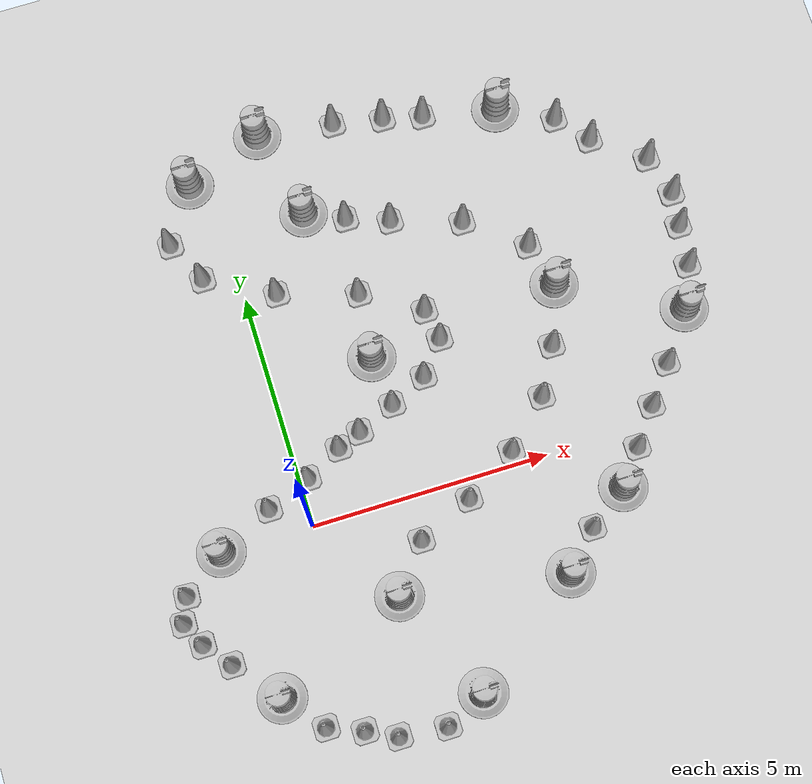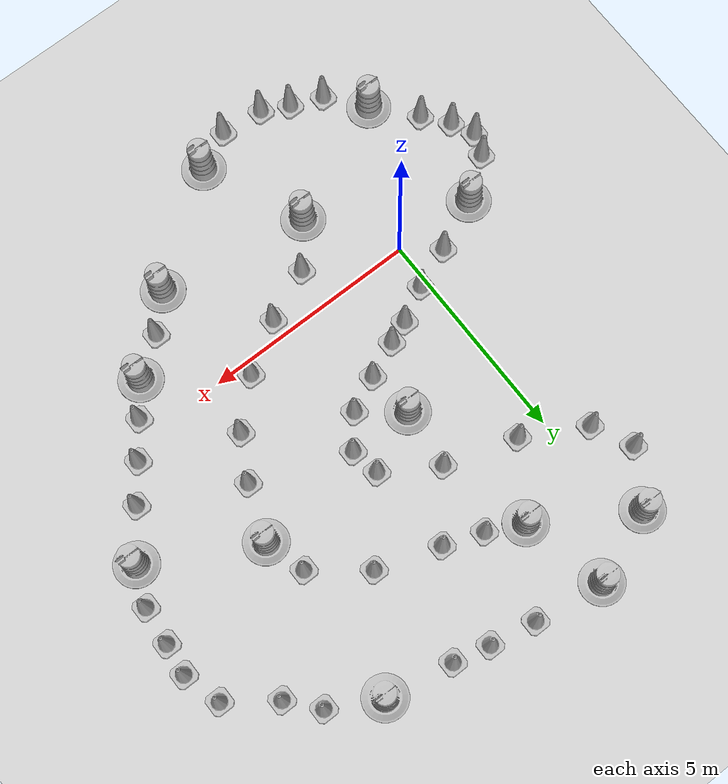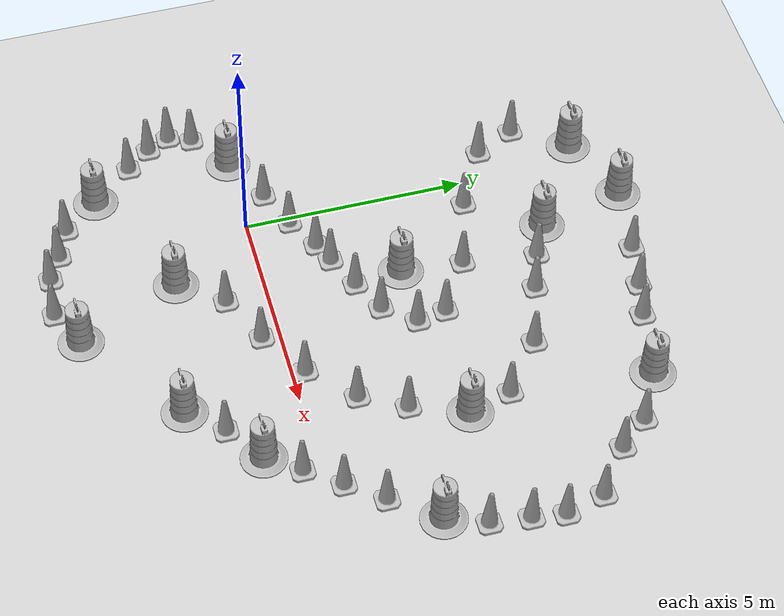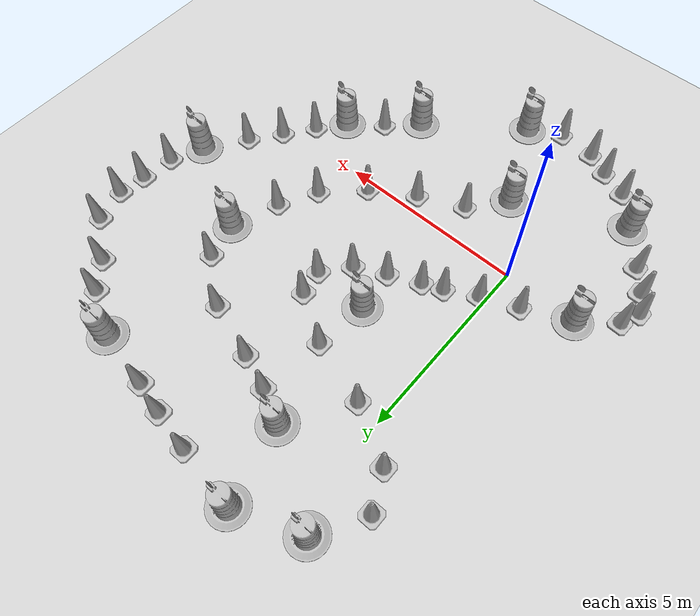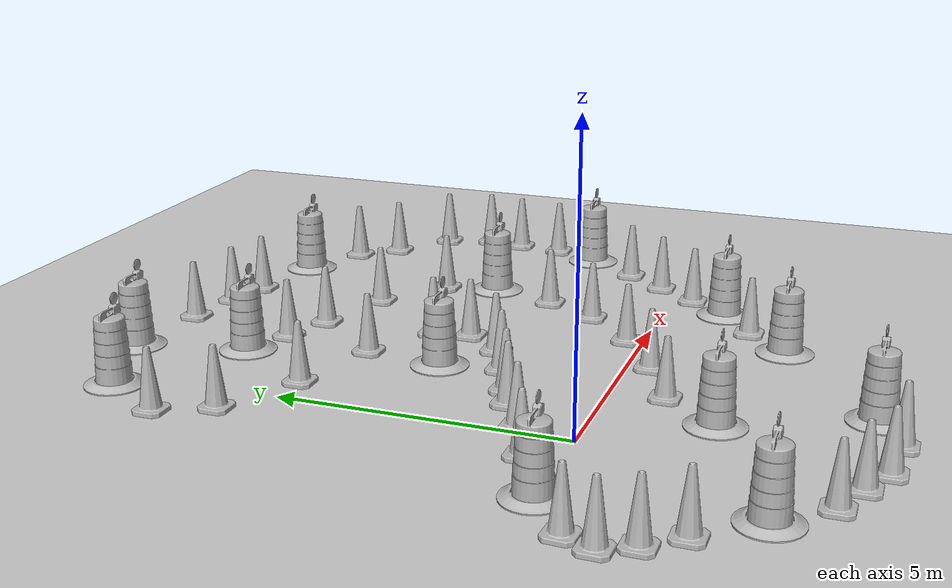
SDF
<sdf version="1.7">
 <world name="default">
  <light name="sun" type="directional">
   <pose>0 0 10 0 -0 0</pose>
   <diffuse>0.8 0.8 0.8 1</diffuse>
   <specular>0.2 0.2 0.2 1</specular>
   <attenuation>
    <range>1000</range>
    <constant>0.9</constant>
    <linear>0.01</linear>
    <quadratic>0.001</quadratic>
   </attenuation>
   <direction>-0.5 0.1 -0.9</direction>
   <spot><inner_angle>0</inner_angle><outer_angle>0</outer_angle><falloff>0</falloff></spot>
  </light>
  <model name="ground_plane">
   <static>1</static>
   <link name="link">
    <collision name="collision">
     <geometry><plane><normal>0 0 1</normal><size>100 100</size></plane></geometry>
     <surface>
      <contact><collide_bitmask>65535</collide_bitmask></contact>
      <friction><ode><mu>100</mu><mu2>50</mu2></ode></friction>
     </surface>
    </collision>
    <visual name="visual">
     <cast_shadows>0</cast_shadows>
     <geometry><plane><normal>0 0 1</normal><size>100 100</size></plane></geometry>
     <material>
      <script><uri>file://media/materials/scripts/gazebo.material</uri><name>Gazebo/Grey</name></script>
     </material>
    </visual>
   </link>
  </model>
  <gravity>0 0 -9.8</gravity>
  <magnetic_field>6e-06 2.3e-05 -4.2e-05</magnetic_field>
  <atmosphere type="adiabatic"/>
  <physics type="ode">
   <max_step_size>0.001</max_step_size>
   <real_time_factor>1</real_time_factor>
   <real_time_update_rate>1000</real_time_update_rate>
  </physics>
  <scene><ambient>0.4 0.4 0.4 1</ambient><background>0.7 0.7 0.7 1</background><shadows>1</shadows></scene>
  <audio><device>default</device></audio>
  <spherical_coordinates>
   <surface_model>EARTH_WGS84</surface_model>
   <latitude_deg>0</latitude_deg>
   <longitude_deg>0</longitude_deg>
   <elevation>0</elevation>
   <heading_deg>0</heading_deg>
  </spherical_coordinates>
  <model name="Construction Barrel">
   <link name="link">
    <inertial>
     <pose>0 0 0.4 0 -0 0</pose>
     <mass>500</mass>
     <inertia><ixx>51.2096</ixx><iyy>51.2096</iyy><izz>25</izz><ixy>0</ixy><ixz>0</ixz><iyz>0</iyz></inertia>
    </inertial>
    <collision name="collision">
     <geometry><mesh><uri>model://construction_barrel/meshes/construction_barrel.dae</uri></mesh></geometry>
    </collision>
    <visual name="visual">
     <geometry><mesh><uri>model://construction_barrel/meshes/construction_barrel.dae</uri></mesh></geometry>
    </visual>
   </link>
   <pose>-1.92451 0.031752 -3e-06 -6e-06 -5e-06 -5.8e-05</pose>
  </model>
  <model name="Construction Cone">
   <link name="link">
    <collision name="collision">
     <geometry>
      <mesh><scale>10 10 10</scale><uri>model://construction_cone/meshes/construction_cone.dae</uri></mesh>
     </geometry>
    </collision>
    <visual name="visual">
     <geometry>
      <mesh><scale>10 10 10</scale><uri>model://construction_cone/meshes/construction_cone.dae</uri></mesh>
     </geometry>
    </visual>
    <inertial>
     <inertia><ixx>1</ixx><ixy>0</ixy><ixz>0</ixz><iyy>1</iyy><iyz>0</iyz><izz>1</izz></inertia>
     <mass>1</mass>
    </inertial>
   </link>
   <pose>0.954535 1.38447 -0 0 -0 0</pose>
  </model>
  <model name="Construction Cone_0">
   <link name="link">
    <collision name="collision">
     <geometry>
      <mesh><scale>10 10 10</scale><uri>model://construction_cone/meshes/construction_cone.dae</uri></mesh>
     </geometry>
    </collision>
    <visual name="visual">
     <geometry>
      <mesh><scale>10 10 10</scale><uri>model://construction_cone/meshes/construction_cone.dae</uri></mesh>
     </geometry>
    </visual>
    <inertial>
     <inertia><ixx>1</ixx><ixy>0</ixy><ixz>0</ixz><iyy>1</iyy><iyz>0</iyz><izz>1</izz></inertia>
     <mass>1</mass>
    </inertial>
   </link>
   <pose>1.46718 1.5901 -0 0 -0 0</pose>
  </model>
  <model name="Construction Cone_1">
   <link name="link">
    <collision name="collision">
     <geometry>
      <mesh><scale>10 10 10</scale><uri>model://construction_cone/meshes/construction_cone.dae</uri></mesh>
     </geometry>
    </collision>
    <visual name="visual">
     <geometry>
      <mesh><scale>10 10 10</scale><uri>model://construction_cone/meshes/construction_cone.dae</uri></mesh>
     </geometry>
    </visual>
    <inertial>
     <inertia><ixx>1</ixx><ixy>0</ixy><ixz>0</ixz><iyy>1</iyy><iyz>0</iyz><izz>1</izz></inertia>
     <mass>1</mass>
    </inertial>
   </link>
   <pose>2.26933 1.94448 -0 0 -1e-06 0</pose>
  </model>
  <model name="Construction Cone_2">
   <link name="link">
    <collision name="collision">
     <geometry>
      <mesh><scale>10 10 10</scale><uri>model://construction_cone/meshes/construction_cone.dae</uri></mesh>
     </geometry>
    </collision>
    <visual name="visual">
     <geometry>
      <mesh><scale>10 10 10</scale><uri>model://construction_cone/meshes/construction_cone.dae</uri></mesh>
     </geometry>
    </visual>
    <inertial>
     <inertia><ixx>1</ixx><ixy>0</ixy><ixz>0</ixz><iyy>1</iyy><iyz>0</iyz><izz>1</izz></inertia>
     <mass>1</mass>
    </inertial>
   </link>
   <pose>3.0619 2.32058 -0 0 -1e-06 0</pose>
  </model>
  <model name="Construction Cone_3">
   <link name="link">
    <collision name="collision">
     <geometry>
      <mesh><scale>10 10 10</scale><uri>model://construction_cone/meshes/construction_cone.dae</uri></mesh>
     </geometry>
    </collision>
    <visual name="visual">
     <geometry>
      <mesh><scale>10 10 10</scale><uri>model://construction_cone/meshes/construction_cone.dae</uri></mesh>
     </geometry>
    </visual>
    <inertial>
     <inertia><ixx>1</ixx><ixy>0</ixy><ixz>0</ixz><iyy>1</iyy><iyz>0</iyz><izz>1</izz></inertia>
     <mass>1</mass>
    </inertial>
   </link>
   <pose>3.61683 2.99679 -0 0 -1e-06 0</pose>
  </model>
  <model name="Construction Cone_4">
   <link name="link">
    <collision name="collision">
     <geometry>
      <mesh><scale>10 10 10</scale><uri>model://construction_cone/meshes/construction_cone.dae</uri></mesh>
     </geometry>
    </collision>
    <visual name="visual">
     <geometry>
      <mesh><scale>10 10 10</scale><uri>model://construction_cone/meshes/construction_cone.dae</uri></mesh>
     </geometry>
    </visual>
    <inertial>
     <inertia><ixx>1</ixx><ixy>0</ixy><ixz>0</ixz><iyy>1</iyy><iyz>0</iyz><izz>1</izz></inertia>
     <mass>1</mass>
    </inertial>
   </link>
   <pose>3.49596 3.66758 -0 0 -1e-06 0</pose>
  </model>
  <model name="Construction Cone_5">
   <link name="link">
    <collision name="collision">
     <geometry>
      <mesh><scale>10 10 10</scale><uri>model://construction_cone/meshes/construction_cone.dae</uri></mesh>
     </geometry>
    </collision>
    <visual name="visual">
     <geometry>
      <mesh><scale>10 10 10</scale><uri>model://construction_cone/meshes/construction_cone.dae</uri></mesh>
     </geometry>
    </visual>
    <inertial>
     <inertia><ixx>1</ixx><ixy>0</ixy><ixz>0</ixz><iyy>1</iyy><iyz>0</iyz><izz>1</izz></inertia>
     <mass>1</mass>
    </inertial>
   </link>
   <pose>2.28848 4.41118 -1e-05 0 -0 0</pose>
  </model>
  <model name="Construction Cone_6">
   <link name="link">
    <collision name="collision">
     <geometry>
      <mesh><scale>10 10 10</scale><uri>model://construction_cone/meshes/construction_cone.dae</uri></mesh>
     </geometry>
    </collision>
    <visual name="visual">
     <geometry>
      <mesh><scale>10 10 10</scale><uri>model://construction_cone/meshes/construction_cone.dae</uri></mesh>
     </geometry>
    </visual>
    <inertial>
     <inertia><ixx>1</ixx><ixy>0</ixy><ixz>0</ixz><iyy>1</iyy><iyz>0</iyz><izz>1</izz></inertia>
     <mass>1</mass>
    </inertial>
   </link>
   <pose>0.652727 4.91754 -1e-05 -0 -0 -0</pose>
  </model>
  <model name="Construction Cone_7">
   <link name="link">
    <collision name="collision">
     <geometry>
      <mesh><scale>10 10 10</scale><uri>model://construction_cone/meshes/construction_cone.dae</uri></mesh>
     </geometry>
    </collision>
    <visual name="visual">
     <geometry>
      <mesh><scale>10 10 10</scale><uri>model://construction_cone/meshes/construction_cone.dae</uri></mesh>
     </geometry>
    </visual>
    <inertial>
     <inertia><ixx>1</ixx><ixy>0</ixy><ixz>0</ixz><iyy>1</iyy><iyz>0</iyz><izz>1</izz></inertia>
     <mass>1</mass>
    </inertial>
   </link>
   <pose>-0.740553 5.67866 0 -0 -0 -0</pose>
  </model>
  <model name="Construction Cone_8">
   <link name="link">
    <collision name="collision">
     <geometry>
      <mesh><scale>10 10 10</scale><uri>model://construction_cone/meshes/construction_cone.dae</uri></mesh>
     </geometry>
    </collision>
    <visual name="visual">
     <geometry>
      <mesh><scale>10 10 10</scale><uri>model://construction_cone/meshes/construction_cone.dae</uri></mesh>
     </geometry>
    </visual>
    <inertial>
     <inertia><ixx>1</ixx><ixy>0</ixy><ixz>0</ixz><iyy>1</iyy><iyz>0</iyz><izz>1</izz></inertia>
     <mass>1</mass>
    </inertial>
   </link>
   <pose>-1.18424 6.59227 0 -0 -0 -0</pose>
  </model>
  <model name="Construction Barrel_0">
   <link name="link">
    <inertial>
     <pose>0 0 0.4 0 -0 0</pose>
     <mass>500</mass>
     <inertia><ixx>51.2096</ixx><iyy>51.2096</iyy><izz>25</izz><ixy>0</ixy><ixz>0</ixz><iyz>0</iyz></inertia>
    </inertial>
    <collision name="collision">
     <geometry><mesh><uri>model://construction_barrel/meshes/construction_barrel.dae</uri></mesh></geometry>
    </collision>
    <visual name="visual">
     <geometry><mesh><uri>model://construction_barrel/meshes/construction_barrel.dae</uri></mesh></geometry>
    </visual>
   </link>
   <pose>-0.441609 7.76716 -3e-06 -6e-06 -5e-06 -4.5e-05</pose>
  </model>
  <model name="Construction Barrel_1">
   <link name="link">
    <inertial>
     <pose>0 0 0.4 0 -0 0</pose>
     <mass>500</mass>
     <inertia><ixx>51.2096</ixx><iyy>51.2096</iyy><izz>25</izz><ixy>0</ixy><ixz>0</ixz><iyz>0</iyz></inertia>
    </inertial>
    <collision name="collision">
     <geometry><mesh><uri>model://construction_barrel/meshes/construction_barrel.dae</uri></mesh></geometry>
    </collision>
    <visual name="visual">
     <geometry><mesh><uri>model://construction_barrel/meshes/construction_barrel.dae</uri></mesh></geometry>
    </visual>
   </link>
   <pose>1.22451 8.41761 -3e-06 -6e-06 -5e-06 -4.4e-05</pose>
  </model>
  <model name="Construction Barrel_2">
   <link name="link">
    <inertial>
     <pose>0 0 0.4 0 -0 0</pose>
     <mass>500</mass>
     <inertia><ixx>51.2096</ixx><iyy>51.2096</iyy><izz>25</izz><ixy>0</ixy><ixz>0</ixz><iyz>0</iyz></inertia>
    </inertial>
    <collision name="collision">
     <geometry><mesh><uri>model://construction_barrel/meshes/construction_barrel.dae</uri></mesh></geometry>
    </collision>
    <visual name="visual">
     <geometry><mesh><uri>model://construction_barrel/meshes/construction_barrel.dae</uri></mesh></geometry>
    </visual>
   </link>
   <pose>2.15185 3.02311 -3e-06 -6e-06 -5e-06 -4.3e-05</pose>
  </model>
  <model name="Construction Cone_9">
   <link name="link">
    <collision name="collision">
     <geometry>
      <mesh><scale>10 10 10</scale><uri>model://construction_cone/meshes/construction_cone.dae</uri></mesh>
     </geometry>
    </collision>
    <visual name="visual">
     <geometry>
      <mesh><scale>10 10 10</scale><uri>model://construction_cone/meshes/construction_cone.dae</uri></mesh>
     </geometry>
    </visual>
    <inertial>
     <inertia><ixx>1</ixx><ixy>0</ixy><ixz>0</ixz><iyy>1</iyy><iyz>0</iyz><izz>1</izz></inertia>
     <mass>1</mass>
    </inertial>
   </link>
   <pose>2.83873 8.19346 0 -0 -0 -0</pose>
  </model>
  <model name="Construction Cone_10">
   <link name="link">
    <collision name="collision">
     <geometry>
      <mesh><scale>10 10 10</scale><uri>model://construction_cone/meshes/construction_cone.dae</uri></mesh>
     </geometry>
    </collision>
    <visual name="visual">
     <geometry>
      <mesh><scale>10 10 10</scale><uri>model://construction_cone/meshes/construction_cone.dae</uri></mesh>
     </geometry>
    </visual>
    <inertial>
     <inertia><ixx>1</ixx><ixy>0</ixy><ixz>0</ixz><iyy>1</iyy><iyz>0</iyz><izz>1</izz></inertia>
     <mass>1</mass>
    </inertial>
   </link>
   <pose>4.72101 7.80061 -0 0 -1e-06 0</pose>
  </model>
  <model name="Construction Cone_11">
   <link name="link">
    <collision name="collision">
     <geometry>
      <mesh><scale>10 10 10</scale><uri>model://construction_cone/meshes/construction_cone.dae</uri></mesh>
     </geometry>
    </collision>
    <visual name="visual">
     <geometry>
      <mesh><scale>10 10 10</scale><uri>model://construction_cone/meshes/construction_cone.dae</uri></mesh>
     </geometry>
    </visual>
    <inertial>
     <inertia><ixx>1</ixx><ixy>0</ixy><ixz>0</ixz><iyy>1</iyy><iyz>0</iyz><izz>1</izz></inertia>
     <mass>1</mass>
    </inertial>
   </link>
   <pose>2.01477 -0.929478 -0 0 -0 0</pose>
  </model>
  <model name="Construction Cone_12">
   <link name="link">
    <collision name="collision">
     <geometry>
      <mesh><scale>10 10 10</scale><uri>model://construction_cone/meshes/construction_cone.dae</uri></mesh>
     </geometry>
    </collision>
    <visual name="visual">
     <geometry>
      <mesh><scale>10 10 10</scale><uri>model://construction_cone/meshes/construction_cone.dae</uri></mesh>
     </geometry>
    </visual>
    <inertial>
     <inertia><ixx>1</ixx><ixy>0</ixy><ixz>0</ixz><iyy>1</iyy><iyz>0</iyz><izz>1</izz></inertia>
     <mass>1</mass>
    </inertial>
   </link>
   <pose>3.19186 -0.402968 -0 0 -0 0</pose>
  </model>
  <model name="Construction Cone_13">
   <link name="link">
    <collision name="collision">
     <geometry>
      <mesh><scale>10 10 10</scale><uri>model://construction_cone/meshes/construction_cone.dae</uri></mesh>
     </geometry>
    </collision>
    <visual name="visual">
     <geometry>
      <mesh><scale>10 10 10</scale><uri>model://construction_cone/meshes/construction_cone.dae</uri></mesh>
     </geometry>
    </visual>
    <inertial>
     <inertia><ixx>1</ixx><ixy>0</ixy><ixz>0</ixz><iyy>1</iyy><iyz>0</iyz><izz>1</izz></inertia>
     <mass>1</mass>
    </inertial>
   </link>
   <pose>4.31562 0.287744 -0 0 -0 0</pose>
  </model>
  <model name="Construction Cone_14">
   <link name="link">
    <collision name="collision">
     <geometry>
      <mesh><scale>10 10 10</scale><uri>model://construction_cone/meshes/construction_cone.dae</uri></mesh>
     </geometry>
    </collision>
    <visual name="visual">
     <geometry>
      <mesh><scale>10 10 10</scale><uri>model://construction_cone/meshes/construction_cone.dae</uri></mesh>
     </geometry>
    </visual>
    <inertial>
     <inertia><ixx>1</ixx><ixy>0</ixy><ixz>0</ixz><iyy>1</iyy><iyz>0</iyz><izz>1</izz></inertia>
     <mass>1</mass>
    </inertial>
   </link>
   <pose>5.26056 1.19382 -0 0 -0 0</pose>
  </model>
  <model name="Construction Cone_15">
   <link name="link">
    <collision name="collision">
     <geometry>
      <mesh><scale>10 10 10</scale><uri>model://construction_cone/meshes/construction_cone.dae</uri></mesh>
     </geometry>
    </collision>
    <visual name="visual">
     <geometry>
      <mesh><scale>10 10 10</scale><uri>model://construction_cone/meshes/construction_cone.dae</uri></mesh>
     </geometry>
    </visual>
    <inertial>
     <inertia><ixx>1</ixx><ixy>0</ixy><ixz>0</ixz><iyy>1</iyy><iyz>0</iyz><izz>1</izz></inertia>
     <mass>1</mass>
    </inertial>
   </link>
   <pose>5.7968 2.17287 -0 0 -0 0</pose>
  </model>
  <model name="Construction Cone_16">
   <link name="link">
    <collision name="collision">
     <geometry>
      <mesh><scale>10 10 10</scale><uri>model://construction_cone/meshes/construction_cone.dae</uri></mesh>
     </geometry>
    </collision>
    <visual name="visual">
     <geometry>
      <mesh><scale>10 10 10</scale><uri>model://construction_cone/meshes/construction_cone.dae</uri></mesh>
     </geometry>
    </visual>
    <inertial>
     <inertia><ixx>1</ixx><ixy>0</ixy><ixz>0</ixz><iyy>1</iyy><iyz>0</iyz><izz>1</izz></inertia>
     <mass>1</mass>
    </inertial>
   </link>
   <pose>5.98858 4.38095 -0 0 -0 0</pose>
  </model>
  <model name="Construction Barrel_3">
   <link name="link">
    <inertial>
     <pose>0 0 0.4 0 -0 0</pose>
     <mass>500</mass>
     <inertia><ixx>51.2096</ixx><iyy>51.2096</iyy><izz>25</izz><ixy>0</ixy><ixz>0</ixz><iyz>0</iyz></inertia>
    </inertial>
    <collision name="collision">
     <geometry><mesh><uri>model://construction_barrel/meshes/construction_barrel.dae</uri></mesh></geometry>
    </collision>
    <visual name="visual">
     <geometry><mesh><uri>model://construction_barrel/meshes/construction_barrel.dae</uri></mesh></geometry>
    </visual>
   </link>
   <pose>6.25367 3.41123 -2e-06 -7e-06 -4e-06 -4.1e-05</pose>
  </model>
  <model name="Construction Cone_17">
   <link name="link">
    <collision name="collision">
     <geometry>
      <mesh><scale>10 10 10</scale><uri>model://construction_cone/meshes/construction_cone.dae</uri></mesh>
     </geometry>
    </collision>
    <visual name="visual">
     <geometry>
      <mesh><scale>10 10 10</scale><uri>model://construction_cone/meshes/construction_cone.dae</uri></mesh>
     </geometry>
    </visual>
    <inertial>
     <inertia><ixx>1</ixx><ixy>0</ixy><ixz>0</ixz><iyy>1</iyy><iyz>0</iyz><izz>1</izz></inertia>
     <mass>1</mass>
    </inertial>
   </link>
   <pose>4.8257 5.2831 -0 0 -0 0</pose>
  </model>
  <model name="Construction Cone_18">
   <link name="link">
    <collision name="collision">
     <geometry>
      <mesh><scale>10 10 10</scale><uri>model://construction_cone/meshes/construction_cone.dae</uri></mesh>
     </geometry>
    </collision>
    <visual name="visual">
     <geometry>
      <mesh><scale>10 10 10</scale><uri>model://construction_cone/meshes/construction_cone.dae</uri></mesh>
     </geometry>
    </visual>
    <inertial>
     <inertia><ixx>1</ixx><ixy>0</ixy><ixz>0</ixz><iyy>1</iyy><iyz>0</iyz><izz>1</izz></inertia>
     <mass>1</mass>
    </inertial>
   </link>
   <pose>3.38408 5.75537 0 -0 -0 -0</pose>
  </model>
  <model name="Construction Cone_19">
   <link name="link">
    <collision name="collision">
     <geometry>
      <mesh><scale>10 10 10</scale><uri>model://construction_cone/meshes/construction_cone.dae</uri></mesh>
     </geometry>
    </collision>
    <visual name="visual">
     <geometry>
      <mesh><scale>10 10 10</scale><uri>model://construction_cone/meshes/construction_cone.dae</uri></mesh>
     </geometry>
    </visual>
    <inertial>
     <inertia><ixx>1</ixx><ixy>0</ixy><ixz>0</ixz><iyy>1</iyy><iyz>0</iyz><izz>1</izz></inertia>
     <mass>1</mass>
    </inertial>
   </link>
   <pose>2.49566 6.07524 -0 0 -0 0</pose>
  </model>
  <model name="Construction Barrel_4">
   <link name="link">
    <inertial>
     <pose>0 0 0.4 0 -0 0</pose>
     <mass>500</mass>
     <inertia><ixx>51.2096</ixx><iyy>51.2096</iyy><izz>25</izz><ixy>0</ixy><ixz>0</ixz><iyz>0</iyz></inertia>
    </inertial>
    <collision name="collision">
     <geometry><mesh><uri>model://construction_barrel/meshes/construction_barrel.dae</uri></mesh></geometry>
    </collision>
    <visual name="visual">
     <geometry><mesh><uri>model://construction_barrel/meshes/construction_barrel.dae</uri></mesh></geometry>
    </visual>
   </link>
   <pose>1.68353 6.45859 -2e-06 -7e-06 -4e-06 -3.7e-05</pose>
  </model>
  <model name="Construction Cone_20">
   <link name="link">
    <collision name="collision">
     <geometry>
      <mesh><scale>10 10 10</scale><uri>model://construction_cone/meshes/construction_cone.dae</uri></mesh>
     </geometry>
    </collision>
    <visual name="visual">
     <geometry>
      <mesh><scale>10 10 10</scale><uri>model://construction_cone/meshes/construction_cone.dae</uri></mesh>
     </geometry>
    </visual>
    <inertial>
     <inertia><ixx>1</ixx><ixy>0</ixy><ixz>0</ixz><iyy>1</iyy><iyz>0</iyz><izz>1</izz></inertia>
     <mass>1</mass>
    </inertial>
   </link>
   <pose>3.89008 7.99692 -0 -0 -0 -0</pose>
  </model>
  <model name="Construction Barrel_5">
   <link name="link">
    <inertial>
     <pose>0 0 0.4 0 -0 0</pose>
     <mass>500</mass>
     <inertia><ixx>51.2096</ixx><iyy>51.2096</iyy><izz>25</izz><ixy>0</ixy><ixz>0</ixz><iyz>0</iyz></inertia>
    </inertial>
    <collision name="collision">
     <geometry><mesh><uri>model://construction_barrel/meshes/construction_barrel.dae</uri></mesh></geometry>
    </collision>
    <visual name="visual">
     <geometry><mesh><uri>model://construction_barrel/meshes/construction_barrel.dae</uri></mesh></geometry>
    </visual>
   </link>
   <pose>6.26373 7.50414 -1e-06 -3e-06 -1e-06 -3.3e-05</pose>
  </model>
  <model name="Construction Cone_21">
   <link name="link">
    <collision name="collision">
     <geometry>
      <mesh><scale>10 10 10</scale><uri>model://construction_cone/meshes/construction_cone.dae</uri></mesh>
     </geometry>
    </collision>
    <visual name="visual">
     <geometry>
      <mesh><scale>10 10 10</scale><uri>model://construction_cone/meshes/construction_cone.dae</uri></mesh>
     </geometry>
    </visual>
    <inertial>
     <inertia><ixx>1</ixx><ixy>0</ixy><ixz>0</ixz><iyy>1</iyy><iyz>0</iyz><izz>1</izz></inertia>
     <mass>1</mass>
    </inertial>
   </link>
   <pose>7.39489 6.91132 -2.5e-05 -8e-06 1.3e-05 -0.000618</pose>
  </model>
  <model name="Construction Cone_22">
   <link name="link">
    <collision name="collision">
     <geometry>
      <mesh><scale>10 10 10</scale><uri>model://construction_cone/meshes/construction_cone.dae</uri></mesh>
     </geometry>
    </collision>
    <visual name="visual">
     <geometry>
      <mesh><scale>10 10 10</scale><uri>model://construction_cone/meshes/construction_cone.dae</uri></mesh>
     </geometry>
    </visual>
    <inertial>
     <inertia><ixx>1</ixx><ixy>0</ixy><ixz>0</ixz><iyy>1</iyy><iyz>0</iyz><izz>1</izz></inertia>
     <mass>1</mass>
    </inertial>
   </link>
   <pose>7.96441 6.24222 -0 0 -1e-06 0</pose>
  </model>
  <model name="Construction Cone_23">
   <link name="link">
    <collision name="collision">
     <geometry>
      <mesh><scale>10 10 10</scale><uri>model://construction_cone/meshes/construction_cone.dae</uri></mesh>
     </geometry>
    </collision>
    <visual name="visual">
     <geometry>
      <mesh><scale>10 10 10</scale><uri>model://construction_cone/meshes/construction_cone.dae</uri></mesh>
     </geometry>
    </visual>
    <inertial>
     <inertia><ixx>1</ixx><ixy>0</ixy><ixz>0</ixz><iyy>1</iyy><iyz>0</iyz><izz>1</izz></inertia>
     <mass>1</mass>
    </inertial>
   </link>
   <pose>8.99423 5.4789 -0 0 -1e-06 0</pose>
  </model>
  <model name="Construction Cone_24">
   <link name="link">
    <collision name="collision">
     <geometry>
      <mesh><scale>10 10 10</scale><uri>model://construction_cone/meshes/construction_cone.dae</uri></mesh>
     </geometry>
    </collision>
    <visual name="visual">
     <geometry>
      <mesh><scale>10 10 10</scale><uri>model://construction_cone/meshes/construction_cone.dae</uri></mesh>
     </geometry>
    </visual>
    <inertial>
     <inertia><ixx>1</ixx><ixy>0</ixy><ixz>0</ixz><iyy>1</iyy><iyz>0</iyz><izz>1</izz></inertia>
     <mass>1</mass>
    </inertial>
   </link>
   <pose>9.24712 4.58827 -0 0 -1e-06 0</pose>
  </model>
  <model name="Construction Cone_25">
   <link name="link">
    <collision name="collision">
     <geometry>
      <mesh><scale>10 10 10</scale><uri>model://construction_cone/meshes/construction_cone.dae</uri></mesh>
     </geometry>
    </collision>
    <visual name="visual">
     <geometry>
      <mesh><scale>10 10 10</scale><uri>model://construction_cone/meshes/construction_cone.dae</uri></mesh>
     </geometry>
    </visual>
    <inertial>
     <inertia><ixx>1</ixx><ixy>0</ixy><ixz>0</ixz><iyy>1</iyy><iyz>0</iyz><izz>1</izz></inertia>
     <mass>1</mass>
    </inertial>
   </link>
   <pose>0.174825 0.967848 -0 0 -0 0</pose>
  </model>
  <model name="Construction Cone_26">
   <link name="link">
    <collision name="collision">
     <geometry>
      <mesh><scale>10 10 10</scale><uri>model://construction_cone/meshes/construction_cone.dae</uri></mesh>
     </geometry>
    </collision>
    <visual name="visual">
     <geometry>
      <mesh><scale>10 10 10</scale><uri>model://construction_cone/meshes/construction_cone.dae</uri></mesh>
     </geometry>
    </visual>
    <inertial>
     <inertia><ixx>1</ixx><ixy>0</ixy><ixz>0</ixz><iyy>1</iyy><iyz>0</iyz><izz>1</izz></inertia>
     <mass>1</mass>
    </inertial>
   </link>
   <pose>-0.757559 0.589688 -0 0 -1e-06 0</pose>
  </model>
  <model name="Construction Cone_27">
   <link name="link">
    <collision name="collision">
     <geometry>
      <mesh><scale>10 10 10</scale><uri>model://construction_cone/meshes/construction_cone.dae</uri></mesh>
     </geometry>
    </collision>
    <visual name="visual">
     <geometry>
      <mesh><scale>10 10 10</scale><uri>model://construction_cone/meshes/construction_cone.dae</uri></mesh>
     </geometry>
    </visual>
    <inertial>
     <inertia><ixx>1</ixx><ixy>0</ixy><ixz>0</ixz><iyy>1</iyy><iyz>0</iyz><izz>1</izz></inertia>
     <mass>1</mass>
    </inertial>
   </link>
   <pose>-2.82352 -0.63107 -1e-05 0 0 -0.054118</pose>
  </model>
  <model name="Construction Cone_28">
   <link name="link">
    <collision name="collision">
     <geometry>
      <mesh><scale>10 10 10</scale><uri>model://construction_cone/meshes/construction_cone.dae</uri></mesh>
     </geometry>
    </collision>
    <visual name="visual">
     <geometry>
      <mesh><scale>10 10 10</scale><uri>model://construction_cone/meshes/construction_cone.dae</uri></mesh>
     </geometry>
    </visual>
    <inertial>
     <inertia><ixx>1</ixx><ixy>0</ixy><ixz>0</ixz><iyy>1</iyy><iyz>0</iyz><izz>1</izz></inertia>
     <mass>1</mass>
    </inertial>
   </link>
   <pose>-2.77522 -1.66113 -0 0 0 -0.002679</pose>
  </model>
  <model name="Construction Cone_29">
   <link name="link">
    <collision name="collision">
     <geometry>
      <mesh><scale>10 10 10</scale><uri>model://construction_cone/meshes/construction_cone.dae</uri></mesh>
     </geometry>
    </collision>
    <visual name="visual">
     <geometry>
      <mesh><scale>10 10 10</scale><uri>model://construction_cone/meshes/construction_cone.dae</uri></mesh>
     </geometry>
    </visual>
    <inertial>
     <inertia><ixx>1</ixx><ixy>0</ixy><ixz>0</ixz><iyy>1</iyy><iyz>0</iyz><izz>1</izz></inertia>
     <mass>1</mass>
    </inertial>
   </link>
   <pose>-3.03012 -1.14464 -0 0 0 -0.029666</pose>
  </model>
  <model name="Construction Cone_30">
   <link name="link">
    <collision name="collision">
     <geometry>
      <mesh><scale>10 10 10</scale><uri>model://construction_cone/meshes/construction_cone.dae</uri></mesh>
     </geometry>
    </collision>
    <visual name="visual">
     <geometry>
      <mesh><scale>10 10 10</scale><uri>model://construction_cone/meshes/construction_cone.dae</uri></mesh>
     </geometry>
    </visual>
    <inertial>
     <inertia><ixx>1</ixx><ixy>0</ixy><ixz>0</ixz><iyy>1</iyy><iyz>0</iyz><izz>1</izz></inertia>
     <mass>1</mass>
    </inertial>
   </link>
   <pose>-2.32623 -2.21491 -0 0 -1e-06 0</pose>
  </model>
  <model name="Construction Barrel_6">
   <link name="link">
    <inertial>
     <pose>0 0 0.4 0 -0 0</pose>
     <mass>500</mass>
     <inertia><ixx>51.2096</ixx><iyy>51.2096</iyy><izz>25</izz><ixy>0</ixy><ixz>0</ixz><iyz>0</iyz></inertia>
    </inertial>
    <collision name="collision">
     <geometry><mesh><uri>model://construction_barrel/meshes/construction_barrel.dae</uri></mesh></geometry>
    </collision>
    <visual name="visual">
     <geometry><mesh><uri>model://construction_barrel/meshes/construction_barrel.dae</uri></mesh></geometry>
    </visual>
   </link>
   <pose>-1.55525 -3.13619 -0 0 0 -2.7e-05</pose>
  </model>
  <model name="Construction Barrel_7">
   <link name="link">
    <inertial>
     <pose>0 0 0.4 0 -0 0</pose>
     <mass>500</mass>
     <inertia><ixx>51.2096</ixx><iyy>51.2096</iyy><izz>25</izz><ixy>0</ixy><ixz>0</ixz><iyz>0</iyz></inertia>
    </inertial>
    <collision name="collision">
     <geometry><mesh><uri>model://construction_barrel/meshes/construction_barrel.dae</uri></mesh></geometry>
    </collision>
    <visual name="visual">
     <geometry><mesh><uri>model://construction_barrel/meshes/construction_barrel.dae</uri></mesh></geometry>
    </visual>
   </link>
   <pose>1.25794 -1.88646 -2e-06 8e-06 -4e-06 -2.6e-05</pose>
  </model>
  <model name="Construction Cone_31">
   <link name="link">
    <collision name="collision">
     <geometry>
      <mesh><scale>10 10 10</scale><uri>model://construction_cone/meshes/construction_cone.dae</uri></mesh>
     </geometry>
    </collision>
    <visual name="visual">
     <geometry>
      <mesh><scale>10 10 10</scale><uri>model://construction_cone/meshes/construction_cone.dae</uri></mesh>
     </geometry>
    </visual>
    <inertial>
     <inertia><ixx>1</ixx><ixy>0</ixy><ixz>0</ixz><iyy>1</iyy><iyz>0</iyz><izz>1</izz></inertia>
     <mass>1</mass>
    </inertial>
   </link>
   <pose>-0.885556 -3.94826 -0 0 -0 0</pose>
  </model>
  <model name="Construction Cone_32">
   <link name="link">
    <collision name="collision">
     <geometry>
      <mesh><scale>10 10 10</scale><uri>model://construction_cone/meshes/construction_cone.dae</uri></mesh>
     </geometry>
    </collision>
    <visual name="visual">
     <geometry>
      <mesh><scale>10 10 10</scale><uri>model://construction_cone/meshes/construction_cone.dae</uri></mesh>
     </geometry>
    </visual>
    <inertial>
     <inertia><ixx>1</ixx><ixy>0</ixy><ixz>0</ixz><iyy>1</iyy><iyz>0</iyz><izz>1</izz></inertia>
     <mass>1</mass>
    </inertial>
   </link>
   <pose>0.438367 -4.54263 -1e-05 -1e-06 0 0</pose>
  </model>
  <model name="Construction Cone_33">
   <link name="link">
    <collision name="collision">
     <geometry>
      <mesh><scale>10 10 10</scale><uri>model://construction_cone/meshes/construction_cone.dae</uri></mesh>
     </geometry>
    </collision>
    <visual name="visual">
     <geometry>
      <mesh><scale>10 10 10</scale><uri>model://construction_cone/meshes/construction_cone.dae</uri></mesh>
     </geometry>
    </visual>
    <inertial>
     <inertia><ixx>1</ixx><ixy>0</ixy><ixz>0</ixz><iyy>1</iyy><iyz>0</iyz><izz>1</izz></inertia>
     <mass>1</mass>
    </inertial>
   </link>
   <pose>-0.170238 -4.23943 -0 0 -0 0</pose>
  </model>
  <model name="Construction Cone_34">
   <link name="link">
    <collision name="collision">
     <geometry>
      <mesh><scale>10 10 10</scale><uri>model://construction_cone/meshes/construction_cone.dae</uri></mesh>
     </geometry>
    </collision>
    <visual name="visual">
     <geometry>
      <mesh><scale>10 10 10</scale><uri>model://construction_cone/meshes/construction_cone.dae</uri></mesh>
     </geometry>
    </visual>
    <inertial>
     <inertia><ixx>1</ixx><ixy>0</ixy><ixz>0</ixz><iyy>1</iyy><iyz>0</iyz><izz>1</izz></inertia>
     <mass>1</mass>
    </inertial>
   </link>
   <pose>1.42335 -4.63862 -0 0 -0 0</pose>
  </model>
  <model name="Construction Barrel_8">
   <link name="link">
    <inertial>
     <pose>0 0 0.4 0 -0 0</pose>
     <mass>500</mass>
     <inertia><ixx>51.2096</ixx><iyy>51.2096</iyy><izz>25</izz><ixy>0</ixy><ixz>0</ixz><iyz>0</iyz></inertia>
    </inertial>
    <collision name="collision">
     <geometry><mesh><uri>model://construction_barrel/meshes/construction_barrel.dae</uri></mesh></geometry>
    </collision>
    <visual name="visual">
     <geometry><mesh><uri>model://construction_barrel/meshes/construction_barrel.dae</uri></mesh></geometry>
    </visual>
   </link>
   <pose>6.26356 -1.10115 -0 0 0 -1.9e-05</pose>
  </model>
  <model name="Construction Barrel_9">
   <link name="link">
    <inertial>
     <pose>0 0 0.4 0 -0 0</pose>
     <mass>500</mass>
     <inertia><ixx>51.2096</ixx><iyy>51.2096</iyy><izz>25</izz><ixy>0</ixy><ixz>0</ixz><iyz>0</iyz></inertia>
    </inertial>
    <collision name="collision">
     <geometry><mesh><uri>model://construction_barrel/meshes/construction_barrel.dae</uri></mesh></geometry>
    </collision>
    <visual name="visual">
     <geometry><mesh><uri>model://construction_barrel/meshes/construction_barrel.dae</uri></mesh></geometry>
    </visual>
   </link>
   <pose>2.28821 -4.21926 -0 0 0 -1.7e-05</pose>
  </model>
  <model name="Construction Barrel_10">
   <link name="link">
    <inertial>
     <pose>0 0 0.4 0 -0 0</pose>
     <mass>500</mass>
     <inertia><ixx>51.2096</ixx><iyy>51.2096</iyy><izz>25</izz><ixy>0</ixy><ixz>0</ixz><iyz>0</iyz></inertia>
    </inertial>
    <collision name="collision">
     <geometry><mesh><uri>model://construction_barrel/meshes/construction_barrel.dae</uri></mesh></geometry>
    </collision>
    <visual name="visual">
     <geometry><mesh><uri>model://construction_barrel/meshes/construction_barrel.dae</uri></mesh></geometry>
    </visual>
   </link>
   <pose>4.69358 -2.45199 -0 0 0 -1.6e-05</pose>
  </model>
  <model name="Construction Cone_35">
   <link name="link">
    <collision name="collision">
     <geometry>
      <mesh><scale>10 10 10</scale><uri>model://construction_cone/meshes/construction_cone.dae</uri></mesh>
     </geometry>
    </collision>
    <visual name="visual">
     <geometry>
      <mesh><scale>10 10 10</scale><uri>model://construction_cone/meshes/construction_cone.dae</uri></mesh>
     </geometry>
    </visual>
    <inertial>
     <inertia><ixx>1</ixx><ixy>0</ixy><ixz>0</ixz><iyy>1</iyy><iyz>0</iyz><izz>1</izz></inertia>
     <mass>1</mass>
    </inertial>
   </link>
   <pose>5.40389 -1.71184 -0 -0 -0 -0</pose>
  </model>
  <model name="Construction Cone_36">
   <link name="link">
    <collision name="collision">
     <geometry>
      <mesh><scale>10 10 10</scale><uri>model://construction_cone/meshes/construction_cone.dae</uri></mesh>
     </geometry>
    </collision>
    <visual name="visual">
     <geometry>
      <mesh><scale>10 10 10</scale><uri>model://construction_cone/meshes/construction_cone.dae</uri></mesh>
     </geometry>
    </visual>
    <inertial>
     <inertia><ixx>1</ixx><ixy>0</ixy><ixz>0</ixz><iyy>1</iyy><iyz>0</iyz><izz>1</izz></inertia>
     <mass>1</mass>
    </inertial>
   </link>
   <pose>6.80232 -0.396327 0 -0 -0 -0</pose>
  </model>
  <model name="Construction Cone_37">
   <link name="link">
    <collision name="collision">
     <geometry>
      <mesh><scale>10 10 10</scale><uri>model://construction_cone/meshes/construction_cone.dae</uri></mesh>
     </geometry>
    </collision>
    <visual name="visual">
     <geometry>
      <mesh><scale>10 10 10</scale><uri>model://construction_cone/meshes/construction_cone.dae</uri></mesh>
     </geometry>
    </visual>
    <inertial>
     <inertia><ixx>1</ixx><ixy>0</ixy><ixz>0</ixz><iyy>1</iyy><iyz>0</iyz><izz>1</izz></inertia>
     <mass>1</mass>
    </inertial>
   </link>
   <pose>7.36362 0.345417 -0 0 -1e-06 0</pose>
  </model>
  <model name="Construction Barrel_11">
   <link name="link">
    <inertial>
     <pose>0 0 0.4 0 -0 0</pose>
     <mass>500</mass>
     <inertia><ixx>51.2096</ixx><iyy>51.2096</iyy><izz>25</izz><ixy>0</ixy><ixz>0</ixz><iyz>0</iyz></inertia>
    </inertial>
    <collision name="collision">
     <geometry><mesh><uri>model://construction_barrel/meshes/construction_barrel.dae</uri></mesh></geometry>
    </collision>
    <visual name="visual">
     <geometry><mesh><uri>model://construction_barrel/meshes/construction_barrel.dae</uri></mesh></geometry>
    </visual>
   </link>
   <pose>8.68665 2.11749 -4e-06 -9e-06 1e-06 -7e-06</pose>
  </model>
  <model name="Construction Cone_38">
   <link name="link">
    <collision name="collision">
     <geometry>
      <mesh><scale>10 10 10</scale><uri>model://construction_cone/meshes/construction_cone.dae</uri></mesh>
     </geometry>
    </collision>
    <visual name="visual">
     <geometry>
      <mesh><scale>10 10 10</scale><uri>model://construction_cone/meshes/construction_cone.dae</uri></mesh>
     </geometry>
    </visual>
    <inertial>
     <inertia><ixx>1</ixx><ixy>0</ixy><ixz>0</ixz><iyy>1</iyy><iyz>0</iyz><izz>1</izz></inertia>
     <mass>1</mass>
    </inertial>
   </link>
   <pose>7.95174 1.10977 -0 0 -0 0</pose>
  </model>
  <model name="Construction Cone_39">
   <link name="link">
    <collision name="collision">
     <geometry>
      <mesh><scale>10 10 10</scale><uri>model://construction_cone/meshes/construction_cone.dae</uri></mesh>
     </geometry>
    </collision>
    <visual name="visual">
     <geometry>
      <mesh><scale>10 10 10</scale><uri>model://construction_cone/meshes/construction_cone.dae</uri></mesh>
     </geometry>
    </visual>
    <inertial>
     <inertia><ixx>1</ixx><ixy>0</ixy><ixz>0</ixz><iyy>1</iyy><iyz>0</iyz><izz>1</izz></inertia>
     <mass>1</mass>
    </inertial>
   </link>
   <pose>9.05494 2.984 -0 0 -0 0</pose>
  </model>
  <model name="Construction Cone_40">
   <link name="link">
    <collision name="collision">
     <geometry>
      <mesh><scale>10 10 10</scale><uri>model://construction_cone/meshes/construction_cone.dae</uri></mesh>
     </geometry>
    </collision>
    <visual name="visual">
     <geometry>
      <mesh><scale>10 10 10</scale><uri>model://construction_cone/meshes/construction_cone.dae</uri></mesh>
     </geometry>
    </visual>
    <inertial>
     <inertia><ixx>1</ixx><ixy>0</ixy><ixz>0</ixz><iyy>1</iyy><iyz>0</iyz><izz>1</izz></inertia>
     <mass>1</mass>
    </inertial>
   </link>
   <pose>9.1545 3.85973 -0 0 -0 0</pose>
  </model>
 </world>
</sdf>
